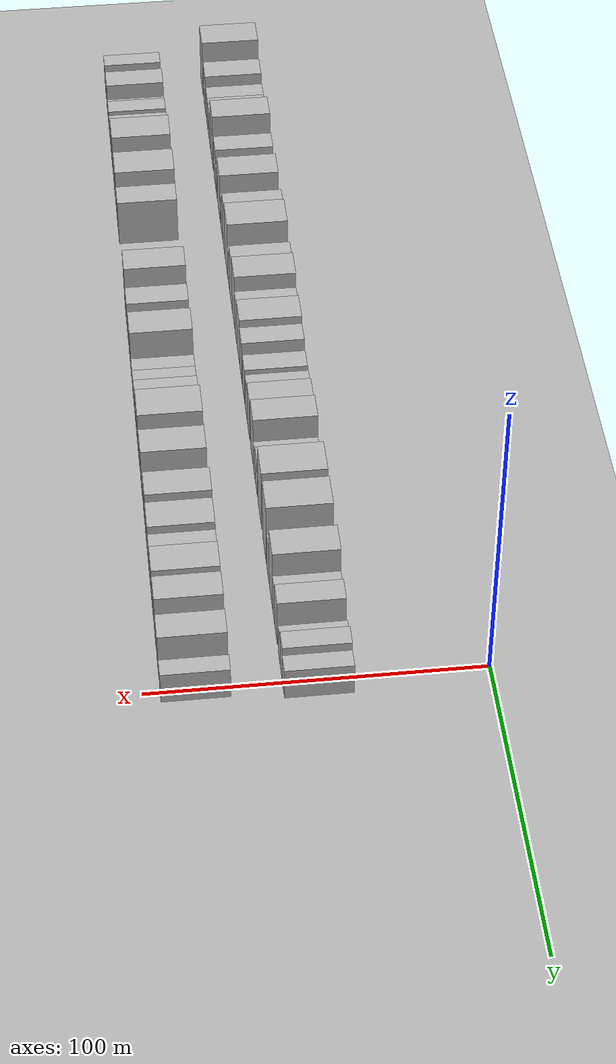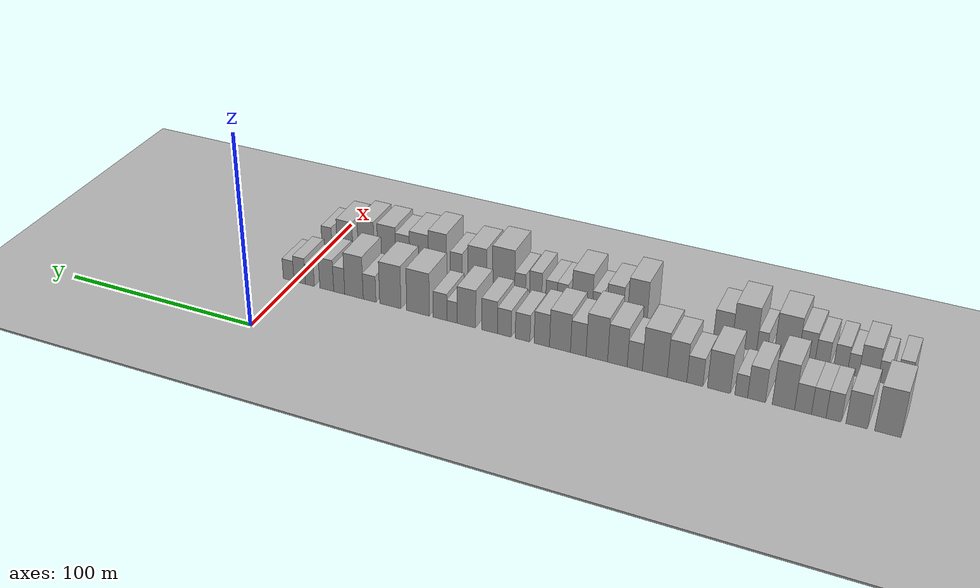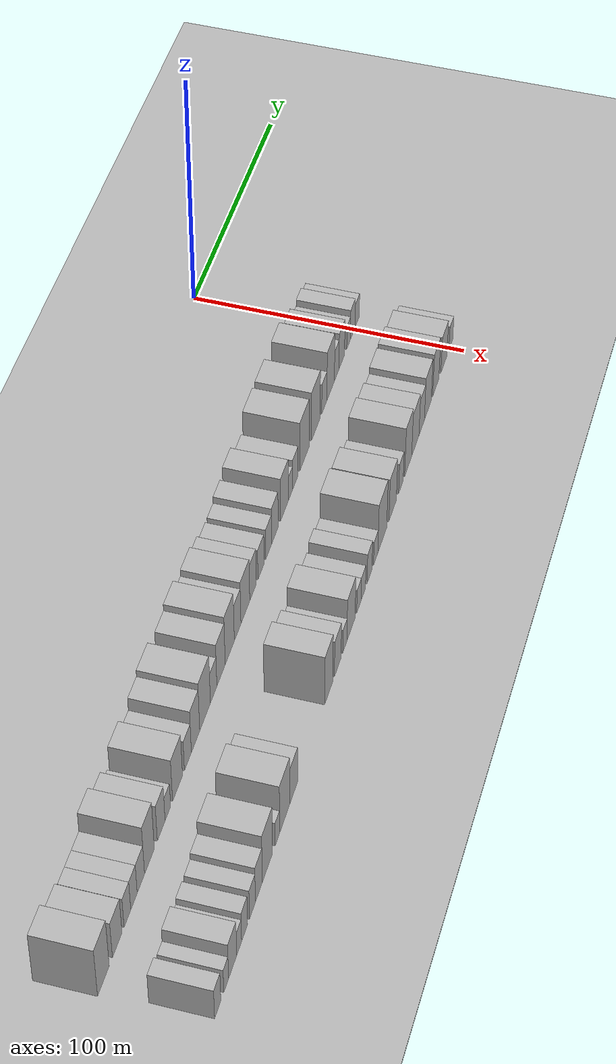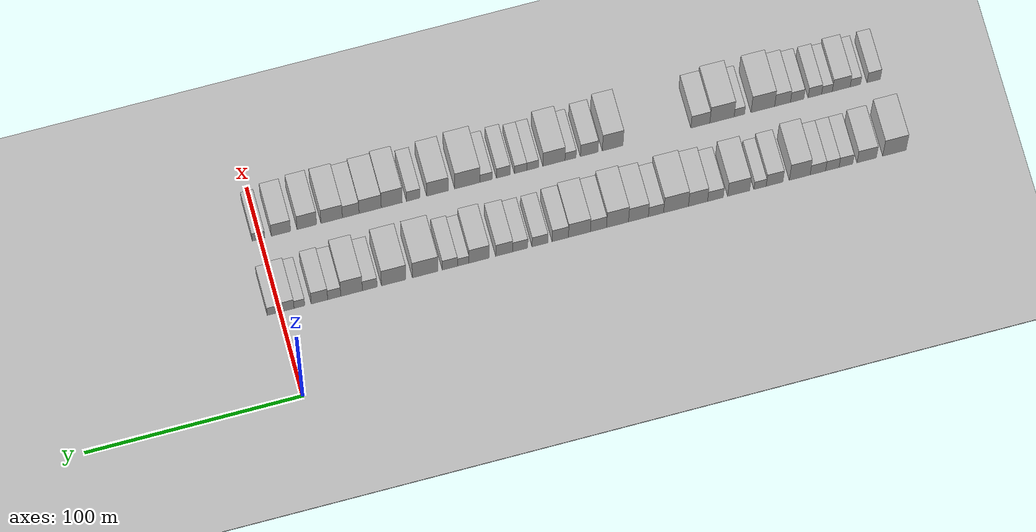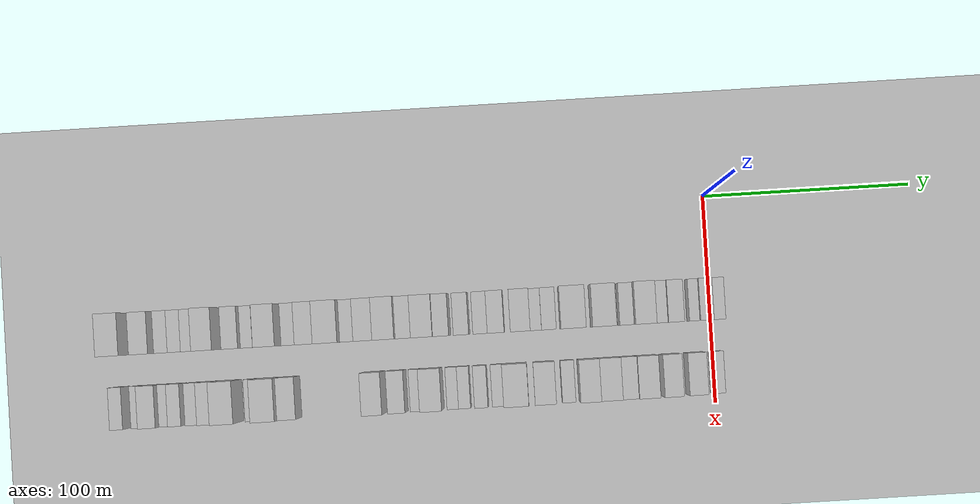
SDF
<sdf version="1.6">
 <world name="default">
  <include><name>ground_plane_1</name><uri>model://HANNAS_ground_plane</uri></include>
  <include>
   <name>ground_plane_2</name>
   <uri>model://HANNAS_ground_plane</uri>
   <pose>100 0 0  0 0 0</pose>
  </include>
  <model name="building_1">
   <static>1</static>
   <pose>50.0000 -284.5758 0 0.000000 0.000000 0.000000</pose>
   <link name="link">
    <pose>0 0 12.00 0 0 0</pose>
    <collision name="collision"><geometry><box><size>20.0000 10.8484 24.0000</size></box></geometry></collision>
    <visual name="visual">
     <cast_shadows>0</cast_shadows>
     <geometry><box><size>20.0000 10.8484 24.0000</size></box></geometry>
     <material>
      <script>
       <uri>model://HANNAS_wall/materials/scripts</uri>
       <uri>model://HANNAS_wall/materials/textures</uri>
       <name>vrc/HANNAS_wall</name>
      </script>
     </material>
    </visual>
   </link>
  </model>
  <model name="building_2">
   <static>1</static>
   <pose>50.0000 -271.6562 0 0.000000 0.000000 0.000000</pose>
   <link name="link">
    <pose>0 0 9.00 0 0 0</pose>
    <collision name="collision"><geometry><box><size>20.0000 8.9907 18.0000</size></box></geometry></collision>
    <visual name="visual">
     <cast_shadows>0</cast_shadows>
     <geometry><box><size>20.0000 8.9907 18.0000</size></box></geometry>
     <material>
      <script>
       <uri>model://HANNAS_wall/materials/scripts</uri>
       <uri>model://HANNAS_wall/materials/textures</uri>
       <name>vrc/HANNAS_wall</name>
      </script>
     </material>
    </visual>
   </link>
  </model>
  <model name="building_3">
   <static>1</static>
   <pose>50.0000 -261.9601 0 0.000000 0.000000 0.000000</pose>
   <link name="link">
    <pose>0 0 7.50 0 0 0</pose>
    <collision name="collision"><geometry><box><size>20.0000 6.4016 15.0000</size></box></geometry></collision>
    <visual name="visual">
     <cast_shadows>0</cast_shadows>
     <geometry><box><size>20.0000 6.4016 15.0000</size></box></geometry>
     <material>
      <script>
       <uri>model://HANNAS_wall/materials/scripts</uri>
       <uri>model://HANNAS_wall/materials/textures</uri>
       <name>vrc/HANNAS_wall</name>
      </script>
     </material>
    </visual>
   </link>
  </model>
  <model name="building_4">
   <static>1</static>
   <pose>50.0000 -255.6335 0 0.000000 0.000000 0.000000</pose>
   <link name="link">
    <pose>0 0 7.50 0 0 0</pose>
    <collision name="collision"><geometry><box><size>20.0000 6.2517 15.0000</size></box></geometry></collision>
    <visual name="visual">
     <cast_shadows>0</cast_shadows>
     <geometry><box><size>20.0000 6.2517 15.0000</size></box></geometry>
     <material>
      <script>
       <uri>model://HANNAS_wall/materials/scripts</uri>
       <uri>model://HANNAS_wall/materials/textures</uri>
       <name>vrc/HANNAS_wall</name>
      </script>
     </material>
    </visual>
   </link>
  </model>
  <model name="building_5">
   <static>1</static>
   <pose>50.0000 -248.9060 0 0.000000 0.000000 0.000000</pose>
   <link name="link">
    <pose>0 0 7.50 0 0 0</pose>
    <collision name="collision"><geometry><box><size>20.0000 7.2034 15.0000</size></box></geometry></collision>
    <visual name="visual">
     <cast_shadows>0</cast_shadows>
     <geometry><box><size>20.0000 7.2034 15.0000</size></box></geometry>
     <material>
      <script>
       <uri>model://HANNAS_wall/materials/scripts</uri>
       <uri>model://HANNAS_wall/materials/textures</uri>
       <name>vrc/HANNAS_wall</name>
      </script>
     </material>
    </visual>
   </link>
  </model>
  <model name="building_6">
   <static>1</static>
   <pose>50.0000 -240.4666 0 0.000000 0.000000 0.000000</pose>
   <link name="link">
    <pose>0 0 12.00 0 0 0</pose>
    <collision name="collision"><geometry><box><size>20.0000 9.6754 24.0000</size></box></geometry></collision>
    <visual name="visual">
     <cast_shadows>0</cast_shadows>
     <geometry><box><size>20.0000 9.6754 24.0000</size></box></geometry>
     <material>
      <script>
       <uri>model://HANNAS_wall/materials/scripts</uri>
       <uri>model://HANNAS_wall/materials/textures</uri>
       <name>vrc/HANNAS_wall</name>
      </script>
     </material>
    </visual>
   </link>
  </model>
  <model name="building_7">
   <static>1</static>
   <pose>50.0000 -228.7247 0 0.000000 0.000000 0.000000</pose>
   <link name="link">
    <pose>0 0 9.00 0 0 0</pose>
    <collision name="collision"><geometry><box><size>20.0000 7.8084 18.0000</size></box></geometry></collision>
    <visual name="visual">
     <cast_shadows>0</cast_shadows>
     <geometry><box><size>20.0000 7.8084 18.0000</size></box></geometry>
     <material>
      <script>
       <uri>model://HANNAS_wall/materials/scripts</uri>
       <uri>model://HANNAS_wall/materials/textures</uri>
       <name>vrc/HANNAS_wall</name>
      </script>
     </material>
    </visual>
   </link>
  </model>
  <model name="building_8">
   <static>1</static>
   <pose>50.0000 -221.9876 0 0.000000 0.000000 0.000000</pose>
   <link name="link">
    <pose>0 0 6.00 0 0 0</pose>
    <collision name="collision"><geometry><box><size>20.0000 5.6657 12.0000</size></box></geometry></collision>
    <visual name="visual">
     <cast_shadows>0</cast_shadows>
     <geometry><box><size>20.0000 5.6657 12.0000</size></box></geometry>
     <material>
      <script>
       <uri>model://HANNAS_wall/materials/scripts</uri>
       <uri>model://HANNAS_wall/materials/textures</uri>
       <name>vrc/HANNAS_wall</name>
      </script>
     </material>
    </visual>
   </link>
  </model>
  <model name="building_9">
   <static>1</static>
   <pose>50.0000 -212.0377 0 0.000000 0.000000 0.000000</pose>
   <link name="link">
    <pose>0 0 10.50 0 0 0</pose>
    <collision name="collision"><geometry><box><size>20.0000 10.2342 21.0000</size></box></geometry></collision>
    <visual name="visual">
     <cast_shadows>0</cast_shadows>
     <geometry><box><size>20.0000 10.2342 21.0000</size></box></geometry>
     <material>
      <script>
       <uri>model://HANNAS_wall/materials/scripts</uri>
       <uri>model://HANNAS_wall/materials/textures</uri>
       <name>vrc/HANNAS_wall</name>
      </script>
     </material>
    </visual>
   </link>
  </model>
  <model name="building_10">
   <static>1</static>
   <pose>50.0000 -201.2680 0 0.000000 0.000000 0.000000</pose>
   <link name="link">
    <pose>0 0 7.50 0 0 0</pose>
    <collision name="collision"><geometry><box><size>20.0000 7.3052 15.0000</size></box></geometry></collision>
    <visual name="visual">
     <cast_shadows>0</cast_shadows>
     <geometry><box><size>20.0000 7.3052 15.0000</size></box></geometry>
     <material>
      <script>
       <uri>model://HANNAS_wall/materials/scripts</uri>
       <uri>model://HANNAS_wall/materials/textures</uri>
       <name>vrc/HANNAS_wall</name>
      </script>
     </material>
    </visual>
   </link>
  </model>
  <model name="building_11">
   <static>1</static>
   <pose>50.0000 -193.1629 0 0.000000 0.000000 0.000000</pose>
   <link name="link">
    <pose>0 0 10.50 0 0 0</pose>
    <collision name="collision"><geometry><box><size>20.0000 8.9050 21.0000</size></box></geometry></collision>
    <visual name="visual">
     <cast_shadows>0</cast_shadows>
     <geometry><box><size>20.0000 8.9050 21.0000</size></box></geometry>
     <material>
      <script>
       <uri>model://HANNAS_wall/materials/scripts</uri>
       <uri>model://HANNAS_wall/materials/textures</uri>
       <name>vrc/HANNAS_wall</name>
      </script>
     </material>
    </visual>
   </link>
  </model>
  <model name="building_12">
   <static>1</static>
   <pose>50.0000 -182.9442 0 0.000000 0.000000 0.000000</pose>
   <link name="link">
    <pose>0 0 12.00 0 0 0</pose>
    <collision name="collision"><geometry><box><size>20.0000 11.5325 24.0000</size></box></geometry></collision>
    <visual name="visual">
     <cast_shadows>0</cast_shadows>
     <geometry><box><size>20.0000 11.5325 24.0000</size></box></geometry>
     <material>
      <script>
       <uri>model://HANNAS_wall/materials/scripts</uri>
       <uri>model://HANNAS_wall/materials/textures</uri>
       <name>vrc/HANNAS_wall</name>
      </script>
     </material>
    </visual>
   </link>
  </model>
  <model name="building_13">
   <static>1</static>
   <pose>50.0000 -173.6545 0 0.000000 0.000000 0.000000</pose>
   <link name="link">
    <pose>0 0 7.50 0 0 0</pose>
    <collision name="collision"><geometry><box><size>20.0000 7.0468 15.0000</size></box></geometry></collision>
    <visual name="visual">
     <cast_shadows>0</cast_shadows>
     <geometry><box><size>20.0000 7.0468 15.0000</size></box></geometry>
     <material>
      <script>
       <uri>model://HANNAS_wall/materials/scripts</uri>
       <uri>model://HANNAS_wall/materials/textures</uri>
       <name>vrc/HANNAS_wall</name>
      </script>
     </material>
    </visual>
   </link>
  </model>
  <model name="building_14">
   <static>1</static>
   <pose>50.0000 -165.5203 0 0.000000 0.000000 0.000000</pose>
   <link name="link">
    <pose>0 0 10.50 0 0 0</pose>
    <collision name="collision"><geometry><box><size>20.0000 9.2216 21.0000</size></box></geometry></collision>
    <visual name="visual">
     <cast_shadows>0</cast_shadows>
     <geometry><box><size>20.0000 9.2216 21.0000</size></box></geometry>
     <material>
      <script>
       <uri>model://HANNAS_wall/materials/scripts</uri>
       <uri>model://HANNAS_wall/materials/textures</uri>
       <name>vrc/HANNAS_wall</name>
      </script>
     </material>
    </visual>
   </link>
  </model>
  <model name="building_15">
   <static>1</static>
   <pose>50.0000 -155.7967 0 0.000000 0.000000 0.000000</pose>
   <link name="link">
    <pose>0 0 12.00 0 0 0</pose>
    <collision name="collision"><geometry><box><size>20.0000 10.2256 24.0000</size></box></geometry></collision>
    <visual name="visual">
     <cast_shadows>0</cast_shadows>
     <geometry><box><size>20.0000 10.2256 24.0000</size></box></geometry>
     <material>
      <script>
       <uri>model://HANNAS_wall/materials/scripts</uri>
       <uri>model://HANNAS_wall/materials/textures</uri>
       <name>vrc/HANNAS_wall</name>
      </script>
     </material>
    </visual>
   </link>
  </model>
  <model name="building_16">
   <static>1</static>
   <pose>50.0000 -146.9506 0 0.000000 0.000000 0.000000</pose>
   <link name="link">
    <pose>0 0 9.00 0 0 0</pose>
    <collision name="collision"><geometry><box><size>20.0000 7.4665 18.0000</size></box></geometry></collision>
    <visual name="visual">
     <cast_shadows>0</cast_shadows>
     <geometry><box><size>20.0000 7.4665 18.0000</size></box></geometry>
     <material>
      <script>
       <uri>model://HANNAS_wall/materials/scripts</uri>
       <uri>model://HANNAS_wall/materials/textures</uri>
       <name>vrc/HANNAS_wall</name>
      </script>
     </material>
    </visual>
   </link>
  </model>
  <model name="building_17">
   <static>1</static>
   <pose>50.0000 -138.1325 0 0.000000 0.000000 0.000000</pose>
   <link name="link">
    <pose>0 0 10.50 0 0 0</pose>
    <collision name="collision"><geometry><box><size>20.0000 10.1697 21.0000</size></box></geometry></collision>
    <visual name="visual">
     <cast_shadows>0</cast_shadows>
     <geometry><box><size>20.0000 10.1697 21.0000</size></box></geometry>
     <material>
      <script>
       <uri>model://HANNAS_wall/materials/scripts</uri>
       <uri>model://HANNAS_wall/materials/textures</uri>
       <name>vrc/HANNAS_wall</name>
      </script>
     </material>
    </visual>
   </link>
  </model>
  <model name="building_18">
   <static>1</static>
   <pose>50.0000 -129.2719 0 0.000000 0.000000 0.000000</pose>
   <link name="link">
    <pose>0 0 9.00 0 0 0</pose>
    <collision name="collision"><geometry><box><size>20.0000 7.5515 18.0000</size></box></geometry></collision>
    <visual name="visual">
     <cast_shadows>0</cast_shadows>
     <geometry><box><size>20.0000 7.5515 18.0000</size></box></geometry>
     <material>
      <script>
       <uri>model://HANNAS_wall/materials/scripts</uri>
       <uri>model://HANNAS_wall/materials/textures</uri>
       <name>vrc/HANNAS_wall</name>
      </script>
     </material>
    </visual>
   </link>
  </model>
  <model name="building_19">
   <static>1</static>
   <pose>50.0000 -119.8560 0 0.000000 0.000000 0.000000</pose>
   <link name="link">
    <pose>0 0 7.50 0 0 0</pose>
    <collision name="collision"><geometry><box><size>20.0000 7.2804 15.0000</size></box></geometry></collision>
    <visual name="visual">
     <cast_shadows>0</cast_shadows>
     <geometry><box><size>20.0000 7.2804 15.0000</size></box></geometry>
     <material>
      <script>
       <uri>model://HANNAS_wall/materials/scripts</uri>
       <uri>model://HANNAS_wall/materials/textures</uri>
       <name>vrc/HANNAS_wall</name>
      </script>
     </material>
    </visual>
   </link>
  </model>
  <model name="building_20">
   <static>1</static>
   <pose>50.0000 -110.7603 0 0.000000 0.000000 0.000000</pose>
   <link name="link">
    <pose>0 0 7.50 0 0 0</pose>
    <collision name="collision"><geometry><box><size>20.0000 6.9111 15.0000</size></box></geometry></collision>
    <visual name="visual">
     <cast_shadows>0</cast_shadows>
     <geometry><box><size>20.0000 6.9111 15.0000</size></box></geometry>
     <material>
      <script>
       <uri>model://HANNAS_wall/materials/scripts</uri>
       <uri>model://HANNAS_wall/materials/textures</uri>
       <name>vrc/HANNAS_wall</name>
      </script>
     </material>
    </visual>
   </link>
  </model>
  <model name="building_21">
   <static>1</static>
   <pose>50.0000 -103.3472 0 0.000000 0.000000 0.000000</pose>
   <link name="link">
    <pose>0 0 9.00 0 0 0</pose>
    <collision name="collision"><geometry><box><size>20.0000 7.9150 18.0000</size></box></geometry></collision>
    <visual name="visual">
     <cast_shadows>0</cast_shadows>
     <geometry><box><size>20.0000 7.9150 18.0000</size></box></geometry>
     <material>
      <script>
       <uri>model://HANNAS_wall/materials/scripts</uri>
       <uri>model://HANNAS_wall/materials/textures</uri>
       <name>vrc/HANNAS_wall</name>
      </script>
     </material>
    </visual>
   </link>
  </model>
  <model name="building_22">
   <static>1</static>
   <pose>50.0000 -91.7295 0 0.000000 0.000000 0.000000</pose>
   <link name="link">
    <pose>0 0 10.50 0 0 0</pose>
    <collision name="collision"><geometry><box><size>20.0000 9.3206 21.0000</size></box></geometry></collision>
    <visual name="visual">
     <cast_shadows>0</cast_shadows>
     <geometry><box><size>20.0000 9.3206 21.0000</size></box></geometry>
     <material>
      <script>
       <uri>model://HANNAS_wall/materials/scripts</uri>
       <uri>model://HANNAS_wall/materials/textures</uri>
       <name>vrc/HANNAS_wall</name>
      </script>
     </material>
    </visual>
   </link>
  </model>
  <model name="building_23">
   <static>1</static>
   <pose>50.0000 -84.3872 0 0.000000 0.000000 0.000000</pose>
   <link name="link">
    <pose>0 0 6.00 0 0 0</pose>
    <collision name="collision"><geometry><box><size>20.0000 5.3639 12.0000</size></box></geometry></collision>
    <visual name="visual">
     <cast_shadows>0</cast_shadows>
     <geometry><box><size>20.0000 5.3639 12.0000</size></box></geometry>
     <material>
      <script>
       <uri>model://HANNAS_wall/materials/scripts</uri>
       <uri>model://HANNAS_wall/materials/textures</uri>
       <name>vrc/HANNAS_wall</name>
      </script>
     </material>
    </visual>
   </link>
  </model>
  <model name="building_24">
   <static>1</static>
   <pose>50.0000 -78.2163 0 0.000000 0.000000 0.000000</pose>
   <link name="link">
    <pose>0 0 7.50 0 0 0</pose>
    <collision name="collision"><geometry><box><size>20.0000 6.9779 15.0000</size></box></geometry></collision>
    <visual name="visual">
     <cast_shadows>0</cast_shadows>
     <geometry><box><size>20.0000 6.9779 15.0000</size></box></geometry>
     <material>
      <script>
       <uri>model://HANNAS_wall/materials/scripts</uri>
       <uri>model://HANNAS_wall/materials/textures</uri>
       <name>vrc/HANNAS_wall</name>
      </script>
     </material>
    </visual>
   </link>
  </model>
  <model name="building_25">
   <static>1</static>
   <pose>50.0000 -66.8264 0 0.000000 0.000000 0.000000</pose>
   <link name="link">
    <pose>0 0 12.00 0 0 0</pose>
    <collision name="collision"><geometry><box><size>20.0000 11.8019 24.0000</size></box></geometry></collision>
    <visual name="visual">
     <cast_shadows>0</cast_shadows>
     <geometry><box><size>20.0000 11.8019 24.0000</size></box></geometry>
     <material>
      <script>
       <uri>model://HANNAS_wall/materials/scripts</uri>
       <uri>model://HANNAS_wall/materials/textures</uri>
       <name>vrc/HANNAS_wall</name>
      </script>
     </material>
    </visual>
   </link>
  </model>
  <model name="building_26">
   <static>1</static>
   <pose>50.0000 -52.2825 0 0.000000 0.000000 0.000000</pose>
   <link name="link">
    <pose>0 0 12.00 0 0 0</pose>
    <collision name="collision"><geometry><box><size>20.0000 11.2858 24.0000</size></box></geometry></collision>
    <visual name="visual">
     <cast_shadows>0</cast_shadows>
     <geometry><box><size>20.0000 11.2858 24.0000</size></box></geometry>
     <material>
      <script>
       <uri>model://HANNAS_wall/materials/scripts</uri>
       <uri>model://HANNAS_wall/materials/textures</uri>
       <name>vrc/HANNAS_wall</name>
      </script>
     </material>
    </visual>
   </link>
  </model>
  <model name="building_27">
   <static>1</static>
   <pose>50.0000 -41.2421 0 0.000000 0.000000 0.000000</pose>
   <link name="link">
    <pose>0 0 7.50 0 0 0</pose>
    <collision name="collision"><geometry><box><size>20.0000 6.7951 15.0000</size></box></geometry></collision>
    <visual name="visual">
     <cast_shadows>0</cast_shadows>
     <geometry><box><size>20.0000 6.7951 15.0000</size></box></geometry>
     <material>
      <script>
       <uri>model://HANNAS_wall/materials/scripts</uri>
       <uri>model://HANNAS_wall/materials/textures</uri>
       <name>vrc/HANNAS_wall</name>
      </script>
     </material>
    </visual>
   </link>
  </model>
  <model name="building_28">
   <static>1</static>
   <pose>50.0000 -32.8636 0 0.000000 0.000000 0.000000</pose>
   <link name="link">
    <pose>0 0 12.00 0 0 0</pose>
    <collision name="collision"><geometry><box><size>20.0000 9.9619 24.0000</size></box></geometry></collision>
    <visual name="visual">
     <cast_shadows>0</cast_shadows>
     <geometry><box><size>20.0000 9.9619 24.0000</size></box></geometry>
     <material>
      <script>
       <uri>model://HANNAS_wall/materials/scripts</uri>
       <uri>model://HANNAS_wall/materials/textures</uri>
       <name>vrc/HANNAS_wall</name>
      </script>
     </material>
    </visual>
   </link>
  </model>
  <model name="building_29">
   <static>1</static>
   <pose>50.0000 -24.8612 0 0.000000 0.000000 0.000000</pose>
   <link name="link">
    <pose>0 0 7.50 0 0 0</pose>
    <collision name="collision"><geometry><box><size>20.0000 6.0428 15.0000</size></box></geometry></collision>
    <visual name="visual">
     <cast_shadows>0</cast_shadows>
     <geometry><box><size>20.0000 6.0428 15.0000</size></box></geometry>
     <material>
      <script>
       <uri>model://HANNAS_wall/materials/scripts</uri>
       <uri>model://HANNAS_wall/materials/textures</uri>
       <name>vrc/HANNAS_wall</name>
      </script>
     </material>
    </visual>
   </link>
  </model>
  <model name="building_30">
   <static>1</static>
   <pose>50.0000 -18.0613 0 0.000000 0.000000 0.000000</pose>
   <link name="link">
    <pose>0 0 9.00 0 0 0</pose>
    <collision name="collision"><geometry><box><size>20.0000 7.5571 18.0000</size></box></geometry></collision>
    <visual name="visual">
     <cast_shadows>0</cast_shadows>
     <geometry><box><size>20.0000 7.5571 18.0000</size></box></geometry>
     <material>
      <script>
       <uri>model://HANNAS_wall/materials/scripts</uri>
       <uri>model://HANNAS_wall/materials/textures</uri>
       <name>vrc/HANNAS_wall</name>
      </script>
     </material>
    </visual>
   </link>
  </model>
  <model name="building_31">
   <static>1</static>
   <pose>50.0000 -8.8151 0 0.000000 0.000000 0.000000</pose>
   <link name="link">
    <pose>0 0 6.00 0 0 0</pose>
    <collision name="collision"><geometry><box><size>20.0000 4.9353 12.0000</size></box></geometry></collision>
    <visual name="visual">
     <cast_shadows>0</cast_shadows>
     <geometry><box><size>20.0000 4.9353 12.0000</size></box></geometry>
     <material>
      <script>
       <uri>model://HANNAS_wall/materials/scripts</uri>
       <uri>model://HANNAS_wall/materials/textures</uri>
       <name>vrc/HANNAS_wall</name>
      </script>
     </material>
    </visual>
   </link>
  </model>
  <model name="building_32">
   <static>1</static>
   <pose>50.0000 -3.1559 0 0.000000 0.000000 0.000000</pose>
   <link name="link">
    <pose>0 0 7.50 0 0 0</pose>
    <collision name="collision"><geometry><box><size>20.0000 6.3832 15.0000</size></box></geometry></collision>
    <visual name="visual">
     <cast_shadows>0</cast_shadows>
     <geometry><box><size>20.0000 6.3832 15.0000</size></box></geometry>
     <material>
      <script>
       <uri>model://HANNAS_wall/materials/scripts</uri>
       <uri>model://HANNAS_wall/materials/textures</uri>
       <name>vrc/HANNAS_wall</name>
      </script>
     </material>
    </visual>
   </link>
  </model>
  <model name="building_33">
   <static>1</static>
   <pose>50.0000 3.0091 0 0.000000 0.000000 0.000000</pose>
   <link name="link">
    <pose>0 0 6.00 0 0 0</pose>
    <collision name="collision"><geometry><box><size>20.0000 5.9468 12.0000</size></box></geometry></collision>
    <visual name="visual">
     <cast_shadows>0</cast_shadows>
     <geometry><box><size>20.0000 5.9468 12.0000</size></box></geometry>
     <material>
      <script>
       <uri>model://HANNAS_wall/materials/scripts</uri>
       <uri>model://HANNAS_wall/materials/textures</uri>
       <name>vrc/HANNAS_wall</name>
      </script>
     </material>
    </visual>
   </link>
  </model>
  <model name="building_64">
   <static>1</static>
   <pose>85.0000 -284.8984 0 0.000000 0.000000 0.000000</pose>
   <link name="link">
    <pose>0 0 7.50 0 0 0</pose>
    <collision name="collision"><geometry><box><size>20.0000 6.2032 15.0000</size></box></geometry></collision>
    <visual name="visual">
     <cast_shadows>0</cast_shadows>
     <geometry><box><size>20.0000 6.2032 15.0000</size></box></geometry>
     <material>
      <script>
       <uri>model://HANNAS_wall/materials/scripts</uri>
       <uri>model://HANNAS_wall/materials/textures</uri>
       <name>vrc/HANNAS_wall</name>
      </script>
     </material>
    </visual>
   </link>
  </model>
  <model name="building_65">
   <static>1</static>
   <pose>85.0000 -276.3517 0 0.000000 0.000000 0.000000</pose>
   <link name="link">
    <pose>0 0 6.00 0 0 0</pose>
    <collision name="collision"><geometry><box><size>20.0000 4.8901 12.0000</size></box></geometry></collision>
    <visual name="visual">
     <cast_shadows>0</cast_shadows>
     <geometry><box><size>20.0000 4.8901 12.0000</size></box></geometry>
     <material>
      <script>
       <uri>model://HANNAS_wall/materials/scripts</uri>
       <uri>model://HANNAS_wall/materials/textures</uri>
       <name>vrc/HANNAS_wall</name>
      </script>
     </material>
    </visual>
   </link>
  </model>
  <model name="building_66">
   <static>1</static>
   <pose>85.0000 -269.7179 0 0.000000 0.000000 0.000000</pose>
   <link name="link">
    <pose>0 0 9.00 0 0 0</pose>
    <collision name="collision"><geometry><box><size>20.0000 8.3776 18.0000</size></box></geometry></collision>
    <visual name="visual">
     <cast_shadows>0</cast_shadows>
     <geometry><box><size>20.0000 8.3776 18.0000</size></box></geometry>
     <material>
      <script>
       <uri>model://HANNAS_wall/materials/scripts</uri>
       <uri>model://HANNAS_wall/materials/textures</uri>
       <name>vrc/HANNAS_wall</name>
      </script>
     </material>
    </visual>
   </link>
  </model>
  <model name="building_67">
   <static>1</static>
   <pose>85.0000 -263.0474 0 0.000000 0.000000 0.000000</pose>
   <link name="link">
    <pose>0 0 6.00 0 0 0</pose>
    <collision name="collision"><geometry><box><size>20.0000 4.9632 12.0000</size></box></geometry></collision>
    <visual name="visual">
     <cast_shadows>0</cast_shadows>
     <geometry><box><size>20.0000 4.9632 12.0000</size></box></geometry>
     <material>
      <script>
       <uri>model://HANNAS_wall/materials/scripts</uri>
       <uri>model://HANNAS_wall/materials/textures</uri>
       <name>vrc/HANNAS_wall</name>
      </script>
     </material>
    </visual>
   </link>
  </model>
  <model name="building_68">
   <static>1</static>
   <pose>85.0000 -257.4256 0 0.000000 0.000000 0.000000</pose>
   <link name="link">
    <pose>0 0 7.50 0 0 0</pose>
    <collision name="collision"><geometry><box><size>20.0000 6.2804 15.0000</size></box></geometry></collision>
    <visual name="visual">
     <cast_shadows>0</cast_shadows>
     <geometry><box><size>20.0000 6.2804 15.0000</size></box></geometry>
     <material>
      <script>
       <uri>model://HANNAS_wall/materials/scripts</uri>
       <uri>model://HANNAS_wall/materials/textures</uri>
       <name>vrc/HANNAS_wall</name>
      </script>
     </material>
    </visual>
   </link>
  </model>
  <model name="building_69">
   <static>1</static>
   <pose>85.0000 -249.1545 0 0.000000 0.000000 0.000000</pose>
   <link name="link">
    <pose>0 0 7.50 0 0 0</pose>
    <collision name="collision"><geometry><box><size>20.0000 6.2620 15.0000</size></box></geometry></collision>
    <visual name="visual">
     <cast_shadows>0</cast_shadows>
     <geometry><box><size>20.0000 6.2620 15.0000</size></box></geometry>
     <material>
      <script>
       <uri>model://HANNAS_wall/materials/scripts</uri>
       <uri>model://HANNAS_wall/materials/textures</uri>
       <name>vrc/HANNAS_wall</name>
      </script>
     </material>
    </visual>
   </link>
  </model>
  <model name="building_70">
   <static>1</static>
   <pose>85.0000 -242.3302 0 0.000000 0.000000 0.000000</pose>
   <link name="link">
    <pose>0 0 9.00 0 0 0</pose>
    <collision name="collision"><geometry><box><size>20.0000 7.3866 18.0000</size></box></geometry></collision>
    <visual name="visual">
     <cast_shadows>0</cast_shadows>
     <geometry><box><size>20.0000 7.3866 18.0000</size></box></geometry>
     <material>
      <script>
       <uri>model://HANNAS_wall/materials/scripts</uri>
       <uri>model://HANNAS_wall/materials/textures</uri>
       <name>vrc/HANNAS_wall</name>
      </script>
     </material>
    </visual>
   </link>
  </model>
  <model name="building_71">
   <static>1</static>
   <pose>85.0000 -233.1302 0 0.000000 0.000000 0.000000</pose>
   <link name="link">
    <pose>0 0 12.00 0 0 0</pose>
    <collision name="collision"><geometry><box><size>20.0000 11.0134 24.0000</size></box></geometry></collision>
    <visual name="visual">
     <cast_shadows>0</cast_shadows>
     <geometry><box><size>20.0000 11.0134 24.0000</size></box></geometry>
     <material>
      <script>
       <uri>model://HANNAS_wall/materials/scripts</uri>
       <uri>model://HANNAS_wall/materials/textures</uri>
       <name>vrc/HANNAS_wall</name>
      </script>
     </material>
    </visual>
   </link>
  </model>
  <model name="building_72">
   <static>1</static>
   <pose>85.0000 -222.1878 0 0.000000 0.000000 0.000000</pose>
   <link name="link">
    <pose>0 0 6.00 0 0 0</pose>
    <collision name="collision"><geometry><box><size>20.0000 4.8714 12.0000</size></box></geometry></collision>
    <visual name="visual">
     <cast_shadows>0</cast_shadows>
     <geometry><box><size>20.0000 4.8714 12.0000</size></box></geometry>
     <material>
      <script>
       <uri>model://HANNAS_wall/materials/scripts</uri>
       <uri>model://HANNAS_wall/materials/textures</uri>
       <name>vrc/HANNAS_wall</name>
      </script>
     </material>
    </visual>
   </link>
  </model>
  <model name="building_73">
   <static>1</static>
   <pose>85.0000 -214.0710 0 0.000000 0.000000 0.000000</pose>
   <link name="link">
    <pose>0 0 12.00 0 0 0</pose>
    <collision name="collision"><geometry><box><size>20.0000 11.3623 24.0000</size></box></geometry></collision>
    <visual name="visual">
     <cast_shadows>0</cast_shadows>
     <geometry><box><size>20.0000 11.3623 24.0000</size></box></geometry>
     <material>
      <script>
       <uri>model://HANNAS_wall/materials/scripts</uri>
       <uri>model://HANNAS_wall/materials/textures</uri>
       <name>vrc/HANNAS_wall</name>
      </script>
     </material>
    </visual>
   </link>
  </model>
  <model name="building_74">
   <static>1</static>
   <pose>85.0000 -203.9850 0 0.000000 0.000000 0.000000</pose>
   <link name="link">
    <pose>0 0 9.00 0 0 0</pose>
    <collision name="collision"><geometry><box><size>20.0000 8.8096 18.0000</size></box></geometry></collision>
    <visual name="visual">
     <cast_shadows>0</cast_shadows>
     <geometry><box><size>20.0000 8.8096 18.0000</size></box></geometry>
     <material>
      <script>
       <uri>model://HANNAS_wall/materials/scripts</uri>
       <uri>model://HANNAS_wall/materials/textures</uri>
       <name>vrc/HANNAS_wall</name>
      </script>
     </material>
    </visual>
   </link>
  </model>
  <model name="building_75">
   <static>1</static>
   <pose>85.0000 -163.1398 0 0.000000 0.000000 0.000000</pose>
   <link name="link">
    <pose>0 0 12.00 0 0 0</pose>
    <collision name="collision"><geometry><box><size>20.0000 9.6269 24.0000</size></box></geometry></collision>
    <visual name="visual">
     <cast_shadows>0</cast_shadows>
     <geometry><box><size>20.0000 9.6269 24.0000</size></box></geometry>
     <material>
      <script>
       <uri>model://HANNAS_wall/materials/scripts</uri>
       <uri>model://HANNAS_wall/materials/textures</uri>
       <name>vrc/HANNAS_wall</name>
      </script>
     </material>
    </visual>
   </link>
  </model>
  <model name="building_76">
   <static>1</static>
   <pose>85.0000 -152.2332 0 0.000000 0.000000 0.000000</pose>
   <link name="link">
    <pose>0 0 9.00 0 0 0</pose>
    <collision name="collision"><geometry><box><size>20.0000 8.1862 18.0000</size></box></geometry></collision>
    <visual name="visual">
     <cast_shadows>0</cast_shadows>
     <geometry><box><size>20.0000 8.1862 18.0000</size></box></geometry>
     <material>
      <script>
       <uri>model://HANNAS_wall/materials/scripts</uri>
       <uri>model://HANNAS_wall/materials/textures</uri>
       <name>vrc/HANNAS_wall</name>
      </script>
     </material>
    </visual>
   </link>
  </model>
  <model name="building_77">
   <static>1</static>
   <pose>85.0000 -143.5611 0 0.000000 0.000000 0.000000</pose>
   <link name="link">
    <pose>0 0 6.00 0 0 0</pose>
    <collision name="collision"><geometry><box><size>20.0000 5.1580 12.0000</size></box></geometry></collision>
    <visual name="visual">
     <cast_shadows>0</cast_shadows>
     <geometry><box><size>20.0000 5.1580 12.0000</size></box></geometry>
     <material>
      <script>
       <uri>model://HANNAS_wall/materials/scripts</uri>
       <uri>model://HANNAS_wall/materials/textures</uri>
       <name>vrc/HANNAS_wall</name>
      </script>
     </material>
    </visual>
   </link>
  </model>
  <model name="building_78">
   <static>1</static>
   <pose>85.0000 -135.8305 0 0.000000 0.000000 0.000000</pose>
   <link name="link">
    <pose>0 0 10.50 0 0 0</pose>
    <collision name="collision"><geometry><box><size>20.0000 10.3033 21.0000</size></box></geometry></collision>
    <visual name="visual">
     <cast_shadows>0</cast_shadows>
     <geometry><box><size>20.0000 10.3033 21.0000</size></box></geometry>
     <material>
      <script>
       <uri>model://HANNAS_wall/materials/scripts</uri>
       <uri>model://HANNAS_wall/materials/textures</uri>
       <name>vrc/HANNAS_wall</name>
      </script>
     </material>
    </visual>
   </link>
  </model>
  <model name="building_79">
   <static>1</static>
   <pose>85.0000 -125.9558 0 0.000000 0.000000 0.000000</pose>
   <link name="link">
    <pose>0 0 6.00 0 0 0</pose>
    <collision name="collision"><geometry><box><size>20.0000 5.4460 12.0000</size></box></geometry></collision>
    <visual name="visual">
     <cast_shadows>0</cast_shadows>
     <geometry><box><size>20.0000 5.4460 12.0000</size></box></geometry>
     <material>
      <script>
       <uri>model://HANNAS_wall/materials/scripts</uri>
       <uri>model://HANNAS_wall/materials/textures</uri>
       <name>vrc/HANNAS_wall</name>
      </script>
     </material>
    </visual>
   </link>
  </model>
  <model name="building_80">
   <static>1</static>
   <pose>85.0000 -120.3680 0 0.000000 0.000000 0.000000</pose>
   <link name="link">
    <pose>0 0 6.00 0 0 0</pose>
    <collision name="collision"><geometry><box><size>20.0000 5.7296 12.0000</size></box></geometry></collision>
    <visual name="visual">
     <cast_shadows>0</cast_shadows>
     <geometry><box><size>20.0000 5.7296 12.0000</size></box></geometry>
     <material>
      <script>
       <uri>model://HANNAS_wall/materials/scripts</uri>
       <uri>model://HANNAS_wall/materials/textures</uri>
       <name>vrc/HANNAS_wall</name>
      </script>
     </material>
    </visual>
   </link>
  </model>
  <model name="building_81">
   <static>1</static>
   <pose>85.0000 -112.3263 0 0.000000 0.000000 0.000000</pose>
   <link name="link">
    <pose>0 0 7.50 0 0 0</pose>
    <collision name="collision"><geometry><box><size>20.0000 6.3538 15.0000</size></box></geometry></collision>
    <visual name="visual">
     <cast_shadows>0</cast_shadows>
     <geometry><box><size>20.0000 6.3538 15.0000</size></box></geometry>
     <material>
      <script>
       <uri>model://HANNAS_wall/materials/scripts</uri>
       <uri>model://HANNAS_wall/materials/textures</uri>
       <name>vrc/HANNAS_wall</name>
      </script>
     </material>
    </visual>
   </link>
  </model>
  <model name="building_82">
   <static>1</static>
   <pose>85.0000 -104.3263 0 0.000000 0.000000 0.000000</pose>
   <link name="link">
    <pose>0 0 6.00 0 0 0</pose>
    <collision name="collision"><geometry><box><size>20.0000 5.6463 12.0000</size></box></geometry></collision>
    <visual name="visual">
     <cast_shadows>0</cast_shadows>
     <geometry><box><size>20.0000 5.6463 12.0000</size></box></geometry>
     <material>
      <script>
       <uri>model://HANNAS_wall/materials/scripts</uri>
       <uri>model://HANNAS_wall/materials/textures</uri>
       <name>vrc/HANNAS_wall</name>
      </script>
     </material>
    </visual>
   </link>
  </model>
  <model name="building_83">
   <static>1</static>
   <pose>85.0000 -95.6543 0 0.000000 0.000000 0.000000</pose>
   <link name="link">
    <pose>0 0 12.00 0 0 0</pose>
    <collision name="collision"><geometry><box><size>20.0000 11.6976 24.0000</size></box></geometry></collision>
    <visual name="visual">
     <cast_shadows>0</cast_shadows>
     <geometry><box><size>20.0000 11.6976 24.0000</size></box></geometry>
     <material>
      <script>
       <uri>model://HANNAS_wall/materials/scripts</uri>
       <uri>model://HANNAS_wall/materials/textures</uri>
       <name>vrc/HANNAS_wall</name>
      </script>
     </material>
    </visual>
   </link>
  </model>
  <model name="building_84">
   <static>1</static>
   <pose>85.0000 -81.8157 0 0.000000 0.000000 0.000000</pose>
   <link name="link">
    <pose>0 0 10.50 0 0 0</pose>
    <collision name="collision"><geometry><box><size>20.0000 9.9796 21.0000</size></box></geometry></collision>
    <visual name="visual">
     <cast_shadows>0</cast_shadows>
     <geometry><box><size>20.0000 9.9796 21.0000</size></box></geometry>
     <material>
      <script>
       <uri>model://HANNAS_wall/materials/scripts</uri>
       <uri>model://HANNAS_wall/materials/textures</uri>
       <name>vrc/HANNAS_wall</name>
      </script>
     </material>
    </visual>
   </link>
  </model>
  <model name="building_85">
   <static>1</static>
   <pose>85.0000 -70.6720 0 0.000000 0.000000 0.000000</pose>
   <link name="link">
    <pose>0 0 7.50 0 0 0</pose>
    <collision name="collision"><geometry><box><size>20.0000 6.3076 15.0000</size></box></geometry></collision>
    <visual name="visual">
     <cast_shadows>0</cast_shadows>
     <geometry><box><size>20.0000 6.3076 15.0000</size></box></geometry>
     <material>
      <script>
       <uri>model://HANNAS_wall/materials/scripts</uri>
       <uri>model://HANNAS_wall/materials/textures</uri>
       <name>vrc/HANNAS_wall</name>
      </script>
     </material>
    </visual>
   </link>
  </model>
  <model name="building_86">
   <static>1</static>
   <pose>85.0000 -60.6633 0 0.000000 0.000000 0.000000</pose>
   <link name="link">
    <pose>0 0 12.00 0 0 0</pose>
    <collision name="collision"><geometry><box><size>20.0000 9.7099 24.0000</size></box></geometry></collision>
    <visual name="visual">
     <cast_shadows>0</cast_shadows>
     <geometry><box><size>20.0000 9.7099 24.0000</size></box></geometry>
     <material>
      <script>
       <uri>model://HANNAS_wall/materials/scripts</uri>
       <uri>model://HANNAS_wall/materials/textures</uri>
       <name>vrc/HANNAS_wall</name>
      </script>
     </material>
    </visual>
   </link>
  </model>
  <model name="building_87">
   <static>1</static>
   <pose>85.0000 -50.6779 0 0.000000 0.000000 0.000000</pose>
   <link name="link">
    <pose>0 0 10.50 0 0 0</pose>
    <collision name="collision"><geometry><box><size>20.0000 10.2608 21.0000</size></box></geometry></collision>
    <visual name="visual">
     <cast_shadows>0</cast_shadows>
     <geometry><box><size>20.0000 10.2608 21.0000</size></box></geometry>
     <material>
      <script>
       <uri>model://HANNAS_wall/materials/scripts</uri>
       <uri>model://HANNAS_wall/materials/textures</uri>
       <name>vrc/HANNAS_wall</name>
      </script>
     </material>
    </visual>
   </link>
  </model>
  <model name="building_88">
   <static>1</static>
   <pose>85.0000 -41.6947 0 0.000000 0.000000 0.000000</pose>
   <link name="link">
    <pose>0 0 9.00 0 0 0</pose>
    <collision name="collision"><geometry><box><size>20.0000 7.7056 18.0000</size></box></geometry></collision>
    <visual name="visual">
     <cast_shadows>0</cast_shadows>
     <geometry><box><size>20.0000 7.7056 18.0000</size></box></geometry>
     <material>
      <script>
       <uri>model://HANNAS_wall/materials/scripts</uri>
       <uri>model://HANNAS_wall/materials/textures</uri>
       <name>vrc/HANNAS_wall</name>
      </script>
     </material>
    </visual>
   </link>
  </model>
  <model name="building_89">
   <static>1</static>
   <pose>85.0000 -32.8845 0 0.000000 0.000000 0.000000</pose>
   <link name="link">
    <pose>0 0 10.50 0 0 0</pose>
    <collision name="collision"><geometry><box><size>20.0000 9.9148 21.0000</size></box></geometry></collision>
    <visual name="visual">
     <cast_shadows>0</cast_shadows>
     <geometry><box><size>20.0000 9.9148 21.0000</size></box></geometry>
     <material>
      <script>
       <uri>model://HANNAS_wall/materials/scripts</uri>
       <uri>model://HANNAS_wall/materials/textures</uri>
       <name>vrc/HANNAS_wall</name>
      </script>
     </material>
    </visual>
   </link>
  </model>
  <model name="building_90">
   <static>1</static>
   <pose>85.0000 -21.4152 0 0.000000 0.000000 0.000000</pose>
   <link name="link">
    <pose>0 0 10.50 0 0 0</pose>
    <collision name="collision"><geometry><box><size>20.0000 9.0239 21.0000</size></box></geometry></collision>
    <visual name="visual">
     <cast_shadows>0</cast_shadows>
     <geometry><box><size>20.0000 9.0239 21.0000</size></box></geometry>
     <material>
      <script>
       <uri>model://HANNAS_wall/materials/scripts</uri>
       <uri>model://HANNAS_wall/materials/textures</uri>
       <name>vrc/HANNAS_wall</name>
      </script>
     </material>
    </visual>
   </link>
  </model>
  <model name="building_91">
   <static>1</static>
   <pose>85.0000 -9.4465 0 0.000000 0.000000 0.000000</pose>
   <link name="link">
    <pose>0 0 9.00 0 0 0</pose>
    <collision name="collision"><geometry><box><size>20.0000 8.9135 18.0000</size></box></geometry></collision>
    <visual name="visual">
     <cast_shadows>0</cast_shadows>
     <geometry><box><size>20.0000 8.9135 18.0000</size></box></geometry>
     <material>
      <script>
       <uri>model://HANNAS_wall/materials/scripts</uri>
       <uri>model://HANNAS_wall/materials/textures</uri>
       <name>vrc/HANNAS_wall</name>
      </script>
     </material>
    </visual>
   </link>
  </model>
  <model name="building_92">
   <static>1</static>
   <pose>85.0000 0.9085 0 0.000000 0.000000 0.000000</pose>
   <link name="link">
    <pose>0 0 6.00 0 0 0</pose>
    <collision name="collision"><geometry><box><size>20.0000 5.7964 12.0000</size></box></geometry></collision>
    <visual name="visual">
     <cast_shadows>0</cast_shadows>
     <geometry><box><size>20.0000 5.7964 12.0000</size></box></geometry>
     <material>
      <script>
       <uri>model://HANNAS_wall/materials/scripts</uri>
       <uri>model://HANNAS_wall/materials/textures</uri>
       <name>vrc/HANNAS_wall</name>
      </script>
     </material>
    </visual>
   </link>
  </model>
 </world>
</sdf>
